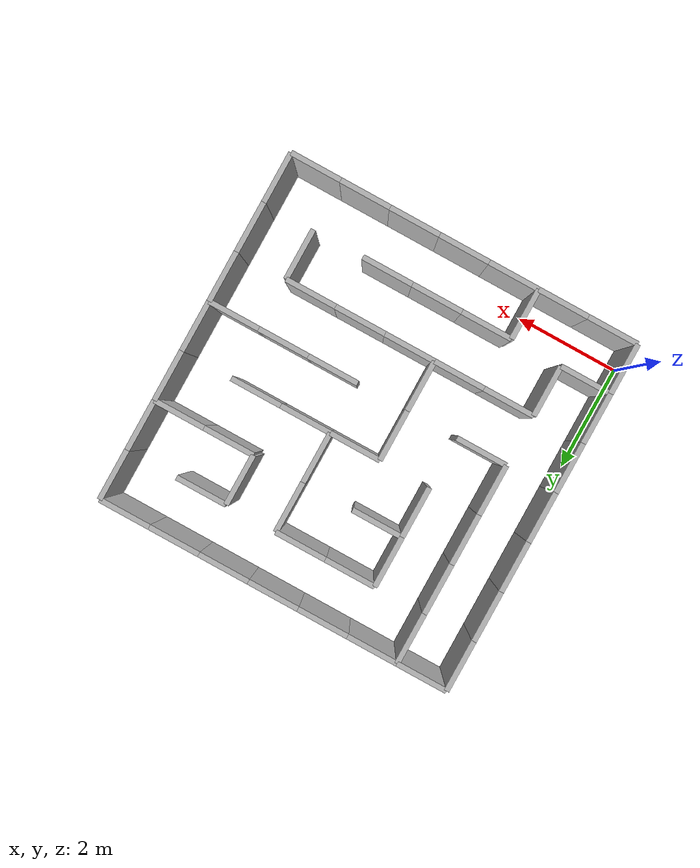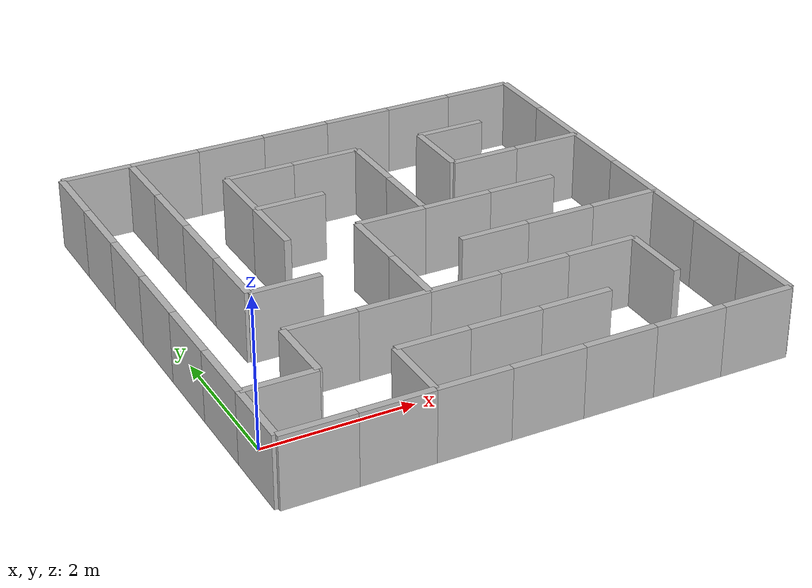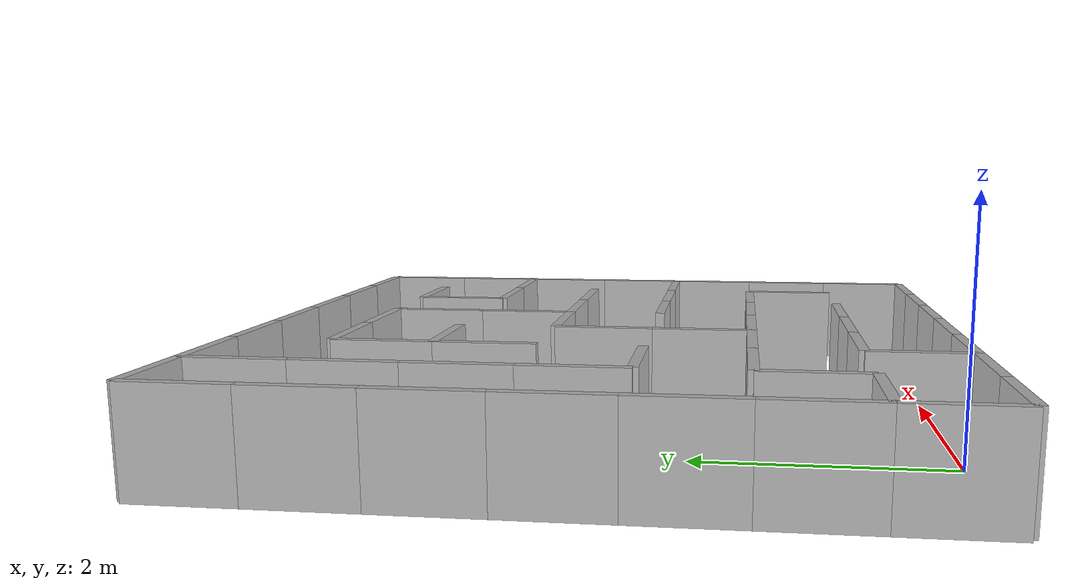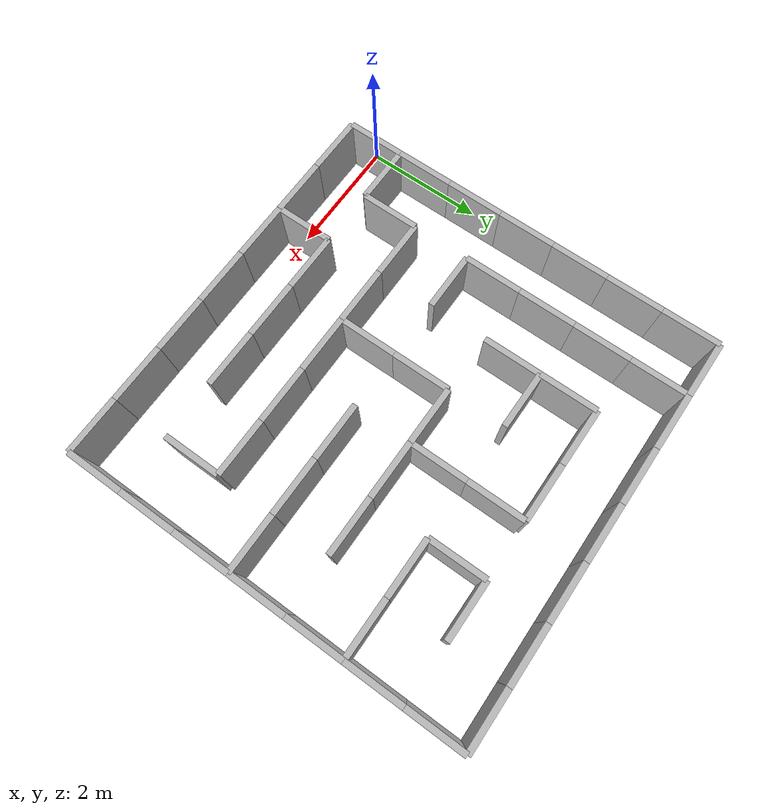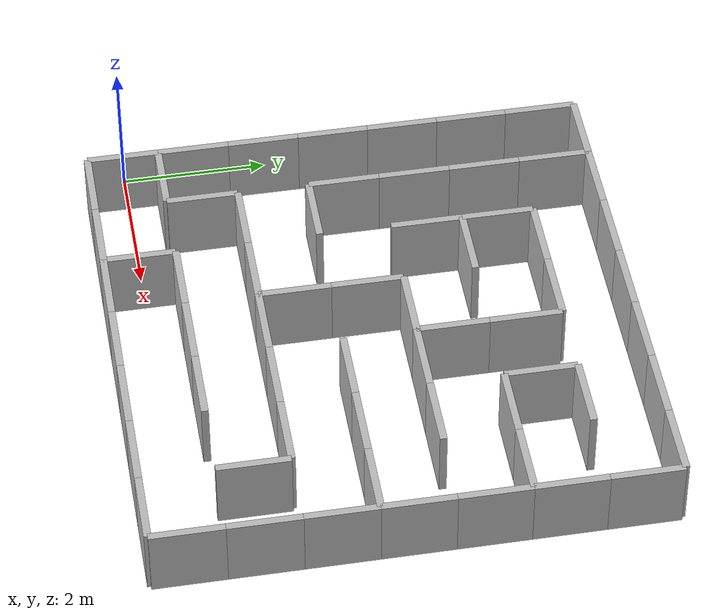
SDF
<?xml version='1.0'?>
<sdf version='1.5'>
	<model name='Maze_ql_1'>
    <static>true</static>
	<pose frame=''>0 0 0 0 0 0</pose>	<link name='Wall_0_0_0'>
		<pose frame=''>0 0 0 0 0 -1.570795</pose>
		<self_collide>0</self_collide>
		<kinematic>0</kinematic>
		<visual name='Wall_Visual'>
			<pose frame=''>0 0 0 0 0 0 </pose>
			<geometry>
				<box>
					<size>1 0.1 1</size>
				</box>
			</geometry>
			<cast_shadows>1</cast_shadows>
			<transparency>0</transparency>
		</visual>
		<collision name='Wall_Collision'>
			<laser_retro>0</laser_retro>
			<max_contacts>10</max_contacts>
			<pose frame=''>0 0 0 0 -0 0</pose>
			<geometry>
				<box>
					<size>1 0.1 1</size>
				</box>
			</geometry>
		</collision>
	</link>
	<link name='Wall_0_0_3'>
		<pose frame=''>0.5 -0.5 0 0 0 0</pose>
		<self_collide>0</self_collide>
		<kinematic>0</kinematic>
		<visual name='Wall_Visual'>
			<pose frame=''>0 0 0 0 0 0 </pose>
			<geometry>
				<box>
					<size>1 0.1 1</size>
				</box>
			</geometry>
			<cast_shadows>1</cast_shadows>
			<transparency>0</transparency>
		</visual>
		<collision name='Wall_Collision'>
			<laser_retro>0</laser_retro>
			<max_contacts>10</max_contacts>
			<pose frame=''>0 0 0 0 -0 0</pose>
			<geometry>
				<box>
					<size>1 0.1 1</size>
				</box>
			</geometry>
		</collision>
	</link>
	<link name='Wall_0_1_0'>
		<pose frame=''>0 1 0 0 0 -1.570795</pose>
		<self_collide>0</self_collide>
		<kinematic>0</kinematic>
		<visual name='Wall_Visual'>
			<pose frame=''>0 0 0 0 0 0 </pose>
			<geometry>
				<box>
					<size>1 0.1 1</size>
				</box>
			</geometry>
			<cast_shadows>1</cast_shadows>
			<transparency>0</transparency>
		</visual>
		<collision name='Wall_Collision'>
			<laser_retro>0</laser_retro>
			<max_contacts>10</max_contacts>
			<pose frame=''>0 0 0 0 -0 0</pose>
			<geometry>
				<box>
					<size>1 0.1 1</size>
				</box>
			</geometry>
		</collision>
	</link>
	<link name='Wall_0_1_3'>
		<pose frame=''>0.5 0.5 0 0 0 0</pose>
		<self_collide>0</self_collide>
		<kinematic>0</kinematic>
		<visual name='Wall_Visual'>
			<pose frame=''>0 0 0 0 0 0 </pose>
			<geometry>
				<box>
					<size>1 0.1 1</size>
				</box>
			</geometry>
			<cast_shadows>1</cast_shadows>
			<transparency>0</transparency>
		</visual>
		<collision name='Wall_Collision'>
			<laser_retro>0</laser_retro>
			<max_contacts>10</max_contacts>
			<pose frame=''>0 0 0 0 -0 0</pose>
			<geometry>
				<box>
					<size>1 0.1 1</size>
				</box>
			</geometry>
		</collision>
	</link>
	<link name='Wall_0_2_0'>
		<pose frame=''>0 2 0 0 0 -1.570795</pose>
		<self_collide>0</self_collide>
		<kinematic>0</kinematic>
		<visual name='Wall_Visual'>
			<pose frame=''>0 0 0 0 0 0 </pose>
			<geometry>
				<box>
					<size>1 0.1 1</size>
				</box>
			</geometry>
			<cast_shadows>1</cast_shadows>
			<transparency>0</transparency>
		</visual>
		<collision name='Wall_Collision'>
			<laser_retro>0</laser_retro>
			<max_contacts>10</max_contacts>
			<pose frame=''>0 0 0 0 -0 0</pose>
			<geometry>
				<box>
					<size>1 0.1 1</size>
				</box>
			</geometry>
		</collision>
	</link>
	<link name='Wall_0_3_0'>
		<pose frame=''>0 3 0 0 0 -1.570795</pose>
		<self_collide>0</self_collide>
		<kinematic>0</kinematic>
		<visual name='Wall_Visual'>
			<pose frame=''>0 0 0 0 0 0 </pose>
			<geometry>
				<box>
					<size>1 0.1 1</size>
				</box>
			</geometry>
			<cast_shadows>1</cast_shadows>
			<transparency>0</transparency>
		</visual>
		<collision name='Wall_Collision'>
			<laser_retro>0</laser_retro>
			<max_contacts>10</max_contacts>
			<pose frame=''>0 0 0 0 -0 0</pose>
			<geometry>
				<box>
					<size>1 0.1 1</size>
				</box>
			</geometry>
		</collision>
	</link>
	<link name='Wall_0_4_0'>
		<pose frame=''>0 4 0 0 0 -1.570795</pose>
		<self_collide>0</self_collide>
		<kinematic>0</kinematic>
		<visual name='Wall_Visual'>
			<pose frame=''>0 0 0 0 0 0 </pose>
			<geometry>
				<box>
					<size>1 0.1 1</size>
				</box>
			</geometry>
			<cast_shadows>1</cast_shadows>
			<transparency>0</transparency>
		</visual>
		<collision name='Wall_Collision'>
			<laser_retro>0</laser_retro>
			<max_contacts>10</max_contacts>
			<pose frame=''>0 0 0 0 -0 0</pose>
			<geometry>
				<box>
					<size>1 0.1 1</size>
				</box>
			</geometry>
		</collision>
	</link>
	<link name='Wall_0_5_0'>
		<pose frame=''>0 5 0 0 0 -1.570795</pose>
		<self_collide>0</self_collide>
		<kinematic>0</kinematic>
		<visual name='Wall_Visual'>
			<pose frame=''>0 0 0 0 0 0 </pose>
			<geometry>
				<box>
					<size>1 0.1 1</size>
				</box>
			</geometry>
			<cast_shadows>1</cast_shadows>
			<transparency>0</transparency>
		</visual>
		<collision name='Wall_Collision'>
			<laser_retro>0</laser_retro>
			<max_contacts>10</max_contacts>
			<pose frame=''>0 0 0 0 -0 0</pose>
			<geometry>
				<box>
					<size>1 0.1 1</size>
				</box>
			</geometry>
		</collision>
	</link>
	<link name='Wall_0_6_0'>
		<pose frame=''>0 6 0 0 0 -1.570795</pose>
		<self_collide>0</self_collide>
		<kinematic>0</kinematic>
		<visual name='Wall_Visual'>
			<pose frame=''>0 0 0 0 0 0 </pose>
			<geometry>
				<box>
					<size>1 0.1 1</size>
				</box>
			</geometry>
			<cast_shadows>1</cast_shadows>
			<transparency>0</transparency>
		</visual>
		<collision name='Wall_Collision'>
			<laser_retro>0</laser_retro>
			<max_contacts>10</max_contacts>
			<pose frame=''>0 0 0 0 -0 0</pose>
			<geometry>
				<box>
					<size>1 0.1 1</size>
				</box>
			</geometry>
		</collision>
	</link>
	<link name='Wall_0_6_1'>
		<pose frame=''>0.5 6.5 0 0 0 0</pose>
		<self_collide>0</self_collide>
		<kinematic>0</kinematic>
		<visual name='Wall_Visual'>
			<pose frame=''>0 0 0 0 0 0 </pose>
			<geometry>
				<box>
					<size>1 0.1 1</size>
				</box>
			</geometry>
			<cast_shadows>1</cast_shadows>
			<transparency>0</transparency>
		</visual>
		<collision name='Wall_Collision'>
			<laser_retro>0</laser_retro>
			<max_contacts>10</max_contacts>
			<pose frame=''>0 0 0 0 -0 0</pose>
			<geometry>
				<box>
					<size>1 0.1 1</size>
				</box>
			</geometry>
		</collision>
	</link>
	<link name='Wall_1_0_3'>
		<pose frame=''>1.5 -0.5 0 0 0 0</pose>
		<self_collide>0</self_collide>
		<kinematic>0</kinematic>
		<visual name='Wall_Visual'>
			<pose frame=''>0 0 0 0 0 0 </pose>
			<geometry>
				<box>
					<size>1 0.1 1</size>
				</box>
			</geometry>
			<cast_shadows>1</cast_shadows>
			<transparency>0</transparency>
		</visual>
		<collision name='Wall_Collision'>
			<laser_retro>0</laser_retro>
			<max_contacts>10</max_contacts>
			<pose frame=''>0 0 0 0 -0 0</pose>
			<geometry>
				<box>
					<size>1 0.1 1</size>
				</box>
			</geometry>
		</collision>
	</link>
	<link name='Wall_1_1_0'>
		<pose frame=''>1 1 0 0 0 -1.570795</pose>
		<self_collide>0</self_collide>
		<kinematic>0</kinematic>
		<visual name='Wall_Visual'>
			<pose frame=''>0 0 0 0 0 0 </pose>
			<geometry>
				<box>
					<size>1 0.1 1</size>
				</box>
			</geometry>
			<cast_shadows>1</cast_shadows>
			<transparency>0</transparency>
		</visual>
		<collision name='Wall_Collision'>
			<laser_retro>0</laser_retro>
			<max_contacts>10</max_contacts>
			<pose frame=''>0 0 0 0 -0 0</pose>
			<geometry>
				<box>
					<size>1 0.1 1</size>
				</box>
			</geometry>
		</collision>
	</link>
	<link name='Wall_1_2_3'>
		<pose frame=''>1.5 1.5 0 0 0 0</pose>
		<self_collide>0</self_collide>
		<kinematic>0</kinematic>
		<visual name='Wall_Visual'>
			<pose frame=''>0 0 0 0 0 0 </pose>
			<geometry>
				<box>
					<size>1 0.1 1</size>
				</box>
			</geometry>
			<cast_shadows>1</cast_shadows>
			<transparency>0</transparency>
		</visual>
		<collision name='Wall_Collision'>
			<laser_retro>0</laser_retro>
			<max_contacts>10</max_contacts>
			<pose frame=''>0 0 0 0 -0 0</pose>
			<geometry>
				<box>
					<size>1 0.1 1</size>
				</box>
			</geometry>
		</collision>
	</link>
	<link name='Wall_1_3_0'>
		<pose frame=''>1 3 0 0 0 -1.570795</pose>
		<self_collide>0</self_collide>
		<kinematic>0</kinematic>
		<visual name='Wall_Visual'>
			<pose frame=''>0 0 0 0 0 0 </pose>
			<geometry>
				<box>
					<size>1 0.1 1</size>
				</box>
			</geometry>
			<cast_shadows>1</cast_shadows>
			<transparency>0</transparency>
		</visual>
		<collision name='Wall_Collision'>
			<laser_retro>0</laser_retro>
			<max_contacts>10</max_contacts>
			<pose frame=''>0 0 0 0 -0 0</pose>
			<geometry>
				<box>
					<size>1 0.1 1</size>
				</box>
			</geometry>
		</collision>
	</link>
	<link name='Wall_1_3_3'>
		<pose frame=''>1.5 2.5 0 0 0 0</pose>
		<self_collide>0</self_collide>
		<kinematic>0</kinematic>
		<visual name='Wall_Visual'>
			<pose frame=''>0 0 0 0 0 0 </pose>
			<geometry>
				<box>
					<size>1 0.1 1</size>
				</box>
			</geometry>
			<cast_shadows>1</cast_shadows>
			<transparency>0</transparency>
		</visual>
		<collision name='Wall_Collision'>
			<laser_retro>0</laser_retro>
			<max_contacts>10</max_contacts>
			<pose frame=''>0 0 0 0 -0 0</pose>
			<geometry>
				<box>
					<size>1 0.1 1</size>
				</box>
			</geometry>
		</collision>
	</link>
	<link name='Wall_1_4_0'>
		<pose frame=''>1 4 0 0 0 -1.570795</pose>
		<self_collide>0</self_collide>
		<kinematic>0</kinematic>
		<visual name='Wall_Visual'>
			<pose frame=''>0 0 0 0 0 0 </pose>
			<geometry>
				<box>
					<size>1 0.1 1</size>
				</box>
			</geometry>
			<cast_shadows>1</cast_shadows>
			<transparency>0</transparency>
		</visual>
		<collision name='Wall_Collision'>
			<laser_retro>0</laser_retro>
			<max_contacts>10</max_contacts>
			<pose frame=''>0 0 0 0 -0 0</pose>
			<geometry>
				<box>
					<size>1 0.1 1</size>
				</box>
			</geometry>
		</collision>
	</link>
	<link name='Wall_1_5_0'>
		<pose frame=''>1 5 0 0 0 -1.570795</pose>
		<self_collide>0</self_collide>
		<kinematic>0</kinematic>
		<visual name='Wall_Visual'>
			<pose frame=''>0 0 0 0 0 0 </pose>
			<geometry>
				<box>
					<size>1 0.1 1</size>
				</box>
			</geometry>
			<cast_shadows>1</cast_shadows>
			<transparency>0</transparency>
		</visual>
		<collision name='Wall_Collision'>
			<laser_retro>0</laser_retro>
			<max_contacts>10</max_contacts>
			<pose frame=''>0 0 0 0 -0 0</pose>
			<geometry>
				<box>
					<size>1 0.1 1</size>
				</box>
			</geometry>
		</collision>
	</link>
	<link name='Wall_1_6_0'>
		<pose frame=''>1 6 0 0 0 -1.570795</pose>
		<self_collide>0</self_collide>
		<kinematic>0</kinematic>
		<visual name='Wall_Visual'>
			<pose frame=''>0 0 0 0 0 0 </pose>
			<geometry>
				<box>
					<size>1 0.1 1</size>
				</box>
			</geometry>
			<cast_shadows>1</cast_shadows>
			<transparency>0</transparency>
		</visual>
		<collision name='Wall_Collision'>
			<laser_retro>0</laser_retro>
			<max_contacts>10</max_contacts>
			<pose frame=''>0 0 0 0 -0 0</pose>
			<geometry>
				<box>
					<size>1 0.1 1</size>
				</box>
			</geometry>
		</collision>
	</link>
	<link name='Wall_1_6_1'>
		<pose frame=''>1.5 6.5 0 0 0 0</pose>
		<self_collide>0</self_collide>
		<kinematic>0</kinematic>
		<visual name='Wall_Visual'>
			<pose frame=''>0 0 0 0 0 0 </pose>
			<geometry>
				<box>
					<size>1 0.1 1</size>
				</box>
			</geometry>
			<cast_shadows>1</cast_shadows>
			<transparency>0</transparency>
		</visual>
		<collision name='Wall_Collision'>
			<laser_retro>0</laser_retro>
			<max_contacts>10</max_contacts>
			<pose frame=''>0 0 0 0 -0 0</pose>
			<geometry>
				<box>
					<size>1 0.1 1</size>
				</box>
			</geometry>
		</collision>
	</link>
	<link name='Wall_2_0_0'>
		<pose frame=''>2 0 0 0 0 -1.570795</pose>
		<self_collide>0</self_collide>
		<kinematic>0</kinematic>
		<visual name='Wall_Visual'>
			<pose frame=''>0 0 0 0 0 0 </pose>
			<geometry>
				<box>
					<size>1 0.1 1</size>
				</box>
			</geometry>
			<cast_shadows>1</cast_shadows>
			<transparency>0</transparency>
		</visual>
		<collision name='Wall_Collision'>
			<laser_retro>0</laser_retro>
			<max_contacts>10</max_contacts>
			<pose frame=''>0 0 0 0 -0 0</pose>
			<geometry>
				<box>
					<size>1 0.1 1</size>
				</box>
			</geometry>
		</collision>
	</link>
	<link name='Wall_2_0_3'>
		<pose frame=''>2.5 -0.5 0 0 0 0</pose>
		<self_collide>0</self_collide>
		<kinematic>0</kinematic>
		<visual name='Wall_Visual'>
			<pose frame=''>0 0 0 0 0 0 </pose>
			<geometry>
				<box>
					<size>1 0.1 1</size>
				</box>
			</geometry>
			<cast_shadows>1</cast_shadows>
			<transparency>0</transparency>
		</visual>
		<collision name='Wall_Collision'>
			<laser_retro>0</laser_retro>
			<max_contacts>10</max_contacts>
			<pose frame=''>0 0 0 0 -0 0</pose>
			<geometry>
				<box>
					<size>1 0.1 1</size>
				</box>
			</geometry>
		</collision>
	</link>
	<link name='Wall_2_1_3'>
		<pose frame=''>2.5 0.5 0 0 0 0</pose>
		<self_collide>0</self_collide>
		<kinematic>0</kinematic>
		<visual name='Wall_Visual'>
			<pose frame=''>0 0 0 0 0 0 </pose>
			<geometry>
				<box>
					<size>1 0.1 1</size>
				</box>
			</geometry>
			<cast_shadows>1</cast_shadows>
			<transparency>0</transparency>
		</visual>
		<collision name='Wall_Collision'>
			<laser_retro>0</laser_retro>
			<max_contacts>10</max_contacts>
			<pose frame=''>0 0 0 0 -0 0</pose>
			<geometry>
				<box>
					<size>1 0.1 1</size>
				</box>
			</geometry>
		</collision>
	</link>
	<link name='Wall_2_2_3'>
		<pose frame=''>2.5 1.5 0 0 0 0</pose>
		<self_collide>0</self_collide>
		<kinematic>0</kinematic>
		<visual name='Wall_Visual'>
			<pose frame=''>0 0 0 0 0 0 </pose>
			<geometry>
				<box>
					<size>1 0.1 1</size>
				</box>
			</geometry>
			<cast_shadows>1</cast_shadows>
			<transparency>0</transparency>
		</visual>
		<collision name='Wall_Collision'>
			<laser_retro>0</laser_retro>
			<max_contacts>10</max_contacts>
			<pose frame=''>0 0 0 0 -0 0</pose>
			<geometry>
				<box>
					<size>1 0.1 1</size>
				</box>
			</geometry>
		</collision>
	</link>
	<link name='Wall_2_4_0'>
		<pose frame=''>2 4 0 0 0 -1.570795</pose>
		<self_collide>0</self_collide>
		<kinematic>0</kinematic>
		<visual name='Wall_Visual'>
			<pose frame=''>0 0 0 0 0 0 </pose>
			<geometry>
				<box>
					<size>1 0.1 1</size>
				</box>
			</geometry>
			<cast_shadows>1</cast_shadows>
			<transparency>0</transparency>
		</visual>
		<collision name='Wall_Collision'>
			<laser_retro>0</laser_retro>
			<max_contacts>10</max_contacts>
			<pose frame=''>0 0 0 0 -0 0</pose>
			<geometry>
				<box>
					<size>1 0.1 1</size>
				</box>
			</geometry>
		</collision>
	</link>
	<link name='Wall_2_5_0'>
		<pose frame=''>2 5 0 0 0 -1.570795</pose>
		<self_collide>0</self_collide>
		<kinematic>0</kinematic>
		<visual name='Wall_Visual'>
			<pose frame=''>0 0 0 0 0 0 </pose>
			<geometry>
				<box>
					<size>1 0.1 1</size>
				</box>
			</geometry>
			<cast_shadows>1</cast_shadows>
			<transparency>0</transparency>
		</visual>
		<collision name='Wall_Collision'>
			<laser_retro>0</laser_retro>
			<max_contacts>10</max_contacts>
			<pose frame=''>0 0 0 0 -0 0</pose>
			<geometry>
				<box>
					<size>1 0.1 1</size>
				</box>
			</geometry>
		</collision>
	</link>
	<link name='Wall_2_5_3'>
		<pose frame=''>2.5 4.5 0 0 0 0</pose>
		<self_collide>0</self_collide>
		<kinematic>0</kinematic>
		<visual name='Wall_Visual'>
			<pose frame=''>0 0 0 0 0 0 </pose>
			<geometry>
				<box>
					<size>1 0.1 1</size>
				</box>
			</geometry>
			<cast_shadows>1</cast_shadows>
			<transparency>0</transparency>
		</visual>
		<collision name='Wall_Collision'>
			<laser_retro>0</laser_retro>
			<max_contacts>10</max_contacts>
			<pose frame=''>0 0 0 0 -0 0</pose>
			<geometry>
				<box>
					<size>1 0.1 1</size>
				</box>
			</geometry>
		</collision>
	</link>
	<link name='Wall_2_6_3'>
		<pose frame=''>2.5 5.5 0 0 0 0</pose>
		<self_collide>0</self_collide>
		<kinematic>0</kinematic>
		<visual name='Wall_Visual'>
			<pose frame=''>0 0 0 0 0 0 </pose>
			<geometry>
				<box>
					<size>1 0.1 1</size>
				</box>
			</geometry>
			<cast_shadows>1</cast_shadows>
			<transparency>0</transparency>
		</visual>
		<collision name='Wall_Collision'>
			<laser_retro>0</laser_retro>
			<max_contacts>10</max_contacts>
			<pose frame=''>0 0 0 0 -0 0</pose>
			<geometry>
				<box>
					<size>1 0.1 1</size>
				</box>
			</geometry>
		</collision>
	</link>
	<link name='Wall_2_6_1'>
		<pose frame=''>2.5 6.5 0 0 0 0</pose>
		<self_collide>0</self_collide>
		<kinematic>0</kinematic>
		<visual name='Wall_Visual'>
			<pose frame=''>0 0 0 0 0 0 </pose>
			<geometry>
				<box>
					<size>1 0.1 1</size>
				</box>
			</geometry>
			<cast_shadows>1</cast_shadows>
			<transparency>0</transparency>
		</visual>
		<collision name='Wall_Collision'>
			<laser_retro>0</laser_retro>
			<max_contacts>10</max_contacts>
			<pose frame=''>0 0 0 0 -0 0</pose>
			<geometry>
				<box>
					<size>1 0.1 1</size>
				</box>
			</geometry>
		</collision>
	</link>
	<link name='Wall_3_0_3'>
		<pose frame=''>3.5 -0.5 0 0 0 0</pose>
		<self_collide>0</self_collide>
		<kinematic>0</kinematic>
		<visual name='Wall_Visual'>
			<pose frame=''>0 0 0 0 0 0 </pose>
			<geometry>
				<box>
					<size>1 0.1 1</size>
				</box>
			</geometry>
			<cast_shadows>1</cast_shadows>
			<transparency>0</transparency>
		</visual>
		<collision name='Wall_Collision'>
			<laser_retro>0</laser_retro>
			<max_contacts>10</max_contacts>
			<pose frame=''>0 0 0 0 -0 0</pose>
			<geometry>
				<box>
					<size>1 0.1 1</size>
				</box>
			</geometry>
		</collision>
	</link>
	<link name='Wall_3_1_3'>
		<pose frame=''>3.5 0.5 0 0 0 0</pose>
		<self_collide>0</self_collide>
		<kinematic>0</kinematic>
		<visual name='Wall_Visual'>
			<pose frame=''>0 0 0 0 0 0 </pose>
			<geometry>
				<box>
					<size>1 0.1 1</size>
				</box>
			</geometry>
			<cast_shadows>1</cast_shadows>
			<transparency>0</transparency>
		</visual>
		<collision name='Wall_Collision'>
			<laser_retro>0</laser_retro>
			<max_contacts>10</max_contacts>
			<pose frame=''>0 0 0 0 -0 0</pose>
			<geometry>
				<box>
					<size>1 0.1 1</size>
				</box>
			</geometry>
		</collision>
	</link>
	<link name='Wall_3_2_0'>
		<pose frame=''>3 2 0 0 0 -1.570795</pose>
		<self_collide>0</self_collide>
		<kinematic>0</kinematic>
		<visual name='Wall_Visual'>
			<pose frame=''>0 0 0 0 0 0 </pose>
			<geometry>
				<box>
					<size>1 0.1 1</size>
				</box>
			</geometry>
			<cast_shadows>1</cast_shadows>
			<transparency>0</transparency>
		</visual>
		<collision name='Wall_Collision'>
			<laser_retro>0</laser_retro>
			<max_contacts>10</max_contacts>
			<pose frame=''>0 0 0 0 -0 0</pose>
			<geometry>
				<box>
					<size>1 0.1 1</size>
				</box>
			</geometry>
		</collision>
	</link>
	<link name='Wall_3_2_3'>
		<pose frame=''>3.5 1.5 0 0 0 0</pose>
		<self_collide>0</self_collide>
		<kinematic>0</kinematic>
		<visual name='Wall_Visual'>
			<pose frame=''>0 0 0 0 0 0 </pose>
			<geometry>
				<box>
					<size>1 0.1 1</size>
				</box>
			</geometry>
			<cast_shadows>1</cast_shadows>
			<transparency>0</transparency>
		</visual>
		<collision name='Wall_Collision'>
			<laser_retro>0</laser_retro>
			<max_contacts>10</max_contacts>
			<pose frame=''>0 0 0 0 -0 0</pose>
			<geometry>
				<box>
					<size>1 0.1 1</size>
				</box>
			</geometry>
		</collision>
	</link>
	<link name='Wall_3_3_0'>
		<pose frame=''>3 3 0 0 0 -1.570795</pose>
		<self_collide>0</self_collide>
		<kinematic>0</kinematic>
		<visual name='Wall_Visual'>
			<pose frame=''>0 0 0 0 0 0 </pose>
			<geometry>
				<box>
					<size>1 0.1 1</size>
				</box>
			</geometry>
			<cast_shadows>1</cast_shadows>
			<transparency>0</transparency>
		</visual>
		<collision name='Wall_Collision'>
			<laser_retro>0</laser_retro>
			<max_contacts>10</max_contacts>
			<pose frame=''>0 0 0 0 -0 0</pose>
			<geometry>
				<box>
					<size>1 0.1 1</size>
				</box>
			</geometry>
		</collision>
	</link>
	<link name='Wall_3_4_3'>
		<pose frame=''>3.5 3.5 0 0 0 0</pose>
		<self_collide>0</self_collide>
		<kinematic>0</kinematic>
		<visual name='Wall_Visual'>
			<pose frame=''>0 0 0 0 0 0 </pose>
			<geometry>
				<box>
					<size>1 0.1 1</size>
				</box>
			</geometry>
			<cast_shadows>1</cast_shadows>
			<transparency>0</transparency>
		</visual>
		<collision name='Wall_Collision'>
			<laser_retro>0</laser_retro>
			<max_contacts>10</max_contacts>
			<pose frame=''>0 0 0 0 -0 0</pose>
			<geometry>
				<box>
					<size>1 0.1 1</size>
				</box>
			</geometry>
		</collision>
	</link>
	<link name='Wall_3_6_3'>
		<pose frame=''>3.5 5.5 0 0 0 0</pose>
		<self_collide>0</self_collide>
		<kinematic>0</kinematic>
		<visual name='Wall_Visual'>
			<pose frame=''>0 0 0 0 0 0 </pose>
			<geometry>
				<box>
					<size>1 0.1 1</size>
				</box>
			</geometry>
			<cast_shadows>1</cast_shadows>
			<transparency>0</transparency>
		</visual>
		<collision name='Wall_Collision'>
			<laser_retro>0</laser_retro>
			<max_contacts>10</max_contacts>
			<pose frame=''>0 0 0 0 -0 0</pose>
			<geometry>
				<box>
					<size>1 0.1 1</size>
				</box>
			</geometry>
		</collision>
	</link>
	<link name='Wall_3_6_1'>
		<pose frame=''>3.5 6.5 0 0 0 0</pose>
		<self_collide>0</self_collide>
		<kinematic>0</kinematic>
		<visual name='Wall_Visual'>
			<pose frame=''>0 0 0 0 0 0 </pose>
			<geometry>
				<box>
					<size>1 0.1 1</size>
				</box>
			</geometry>
			<cast_shadows>1</cast_shadows>
			<transparency>0</transparency>
		</visual>
		<collision name='Wall_Collision'>
			<laser_retro>0</laser_retro>
			<max_contacts>10</max_contacts>
			<pose frame=''>0 0 0 0 -0 0</pose>
			<geometry>
				<box>
					<size>1 0.1 1</size>
				</box>
			</geometry>
		</collision>
	</link>
	<link name='Wall_4_0_3'>
		<pose frame=''>4.5 -0.5 0 0 0 0</pose>
		<self_collide>0</self_collide>
		<kinematic>0</kinematic>
		<visual name='Wall_Visual'>
			<pose frame=''>0 0 0 0 0 0 </pose>
			<geometry>
				<box>
					<size>1 0.1 1</size>
				</box>
			</geometry>
			<cast_shadows>1</cast_shadows>
			<transparency>0</transparency>
		</visual>
		<collision name='Wall_Collision'>
			<laser_retro>0</laser_retro>
			<max_contacts>10</max_contacts>
			<pose frame=''>0 0 0 0 -0 0</pose>
			<geometry>
				<box>
					<size>1 0.1 1</size>
				</box>
			</geometry>
		</collision>
	</link>
	<link name='Wall_4_1_3'>
		<pose frame=''>4.5 0.5 0 0 0 0</pose>
		<self_collide>0</self_collide>
		<kinematic>0</kinematic>
		<visual name='Wall_Visual'>
			<pose frame=''>0 0 0 0 0 0 </pose>
			<geometry>
				<box>
					<size>1 0.1 1</size>
				</box>
			</geometry>
			<cast_shadows>1</cast_shadows>
			<transparency>0</transparency>
		</visual>
		<collision name='Wall_Collision'>
			<laser_retro>0</laser_retro>
			<max_contacts>10</max_contacts>
			<pose frame=''>0 0 0 0 -0 0</pose>
			<geometry>
				<box>
					<size>1 0.1 1</size>
				</box>
			</geometry>
		</collision>
	</link>
	<link name='Wall_4_2_3'>
		<pose frame=''>4.5 1.5 0 0 0 0</pose>
		<self_collide>0</self_collide>
		<kinematic>0</kinematic>
		<visual name='Wall_Visual'>
			<pose frame=''>0 0 0 0 0 0 </pose>
			<geometry>
				<box>
					<size>1 0.1 1</size>
				</box>
			</geometry>
			<cast_shadows>1</cast_shadows>
			<transparency>0</transparency>
		</visual>
		<collision name='Wall_Collision'>
			<laser_retro>0</laser_retro>
			<max_contacts>10</max_contacts>
			<pose frame=''>0 0 0 0 -0 0</pose>
			<geometry>
				<box>
					<size>1 0.1 1</size>
				</box>
			</geometry>
		</collision>
	</link>
	<link name='Wall_4_3_3'>
		<pose frame=''>4.5 2.5 0 0 0 0</pose>
		<self_collide>0</self_collide>
		<kinematic>0</kinematic>
		<visual name='Wall_Visual'>
			<pose frame=''>0 0 0 0 0 0 </pose>
			<geometry>
				<box>
					<size>1 0.1 1</size>
				</box>
			</geometry>
			<cast_shadows>1</cast_shadows>
			<transparency>0</transparency>
		</visual>
		<collision name='Wall_Collision'>
			<laser_retro>0</laser_retro>
			<max_contacts>10</max_contacts>
			<pose frame=''>0 0 0 0 -0 0</pose>
			<geometry>
				<box>
					<size>1 0.1 1</size>
				</box>
			</geometry>
		</collision>
	</link>
	<link name='Wall_4_4_0'>
		<pose frame=''>4 4 0 0 0 -1.570795</pose>
		<self_collide>0</self_collide>
		<kinematic>0</kinematic>
		<visual name='Wall_Visual'>
			<pose frame=''>0 0 0 0 0 0 </pose>
			<geometry>
				<box>
					<size>1 0.1 1</size>
				</box>
			</geometry>
			<cast_shadows>1</cast_shadows>
			<transparency>0</transparency>
		</visual>
		<collision name='Wall_Collision'>
			<laser_retro>0</laser_retro>
			<max_contacts>10</max_contacts>
			<pose frame=''>0 0 0 0 -0 0</pose>
			<geometry>
				<box>
					<size>1 0.1 1</size>
				</box>
			</geometry>
		</collision>
	</link>
	<link name='Wall_4_4_3'>
		<pose frame=''>4.5 3.5 0 0 0 0</pose>
		<self_collide>0</self_collide>
		<kinematic>0</kinematic>
		<visual name='Wall_Visual'>
			<pose frame=''>0 0 0 0 0 0 </pose>
			<geometry>
				<box>
					<size>1 0.1 1</size>
				</box>
			</geometry>
			<cast_shadows>1</cast_shadows>
			<transparency>0</transparency>
		</visual>
		<collision name='Wall_Collision'>
			<laser_retro>0</laser_retro>
			<max_contacts>10</max_contacts>
			<pose frame=''>0 0 0 0 -0 0</pose>
			<geometry>
				<box>
					<size>1 0.1 1</size>
				</box>
			</geometry>
		</collision>
	</link>
	<link name='Wall_4_5_0'>
		<pose frame=''>4 5 0 0 0 -1.570795</pose>
		<self_collide>0</self_collide>
		<kinematic>0</kinematic>
		<visual name='Wall_Visual'>
			<pose frame=''>0 0 0 0 0 0 </pose>
			<geometry>
				<box>
					<size>1 0.1 1</size>
				</box>
			</geometry>
			<cast_shadows>1</cast_shadows>
			<transparency>0</transparency>
		</visual>
		<collision name='Wall_Collision'>
			<laser_retro>0</laser_retro>
			<max_contacts>10</max_contacts>
			<pose frame=''>0 0 0 0 -0 0</pose>
			<geometry>
				<box>
					<size>1 0.1 1</size>
				</box>
			</geometry>
		</collision>
	</link>
	<link name='Wall_4_6_1'>
		<pose frame=''>4.5 6.5 0 0 0 0</pose>
		<self_collide>0</self_collide>
		<kinematic>0</kinematic>
		<visual name='Wall_Visual'>
			<pose frame=''>0 0 0 0 0 0 </pose>
			<geometry>
				<box>
					<size>1 0.1 1</size>
				</box>
			</geometry>
			<cast_shadows>1</cast_shadows>
			<transparency>0</transparency>
		</visual>
		<collision name='Wall_Collision'>
			<laser_retro>0</laser_retro>
			<max_contacts>10</max_contacts>
			<pose frame=''>0 0 0 0 -0 0</pose>
			<geometry>
				<box>
					<size>1 0.1 1</size>
				</box>
			</geometry>
		</collision>
	</link>
	<link name='Wall_5_0_3'>
		<pose frame=''>5.5 -0.5 0 0 0 0</pose>
		<self_collide>0</self_collide>
		<kinematic>0</kinematic>
		<visual name='Wall_Visual'>
			<pose frame=''>0 0 0 0 0 0 </pose>
			<geometry>
				<box>
					<size>1 0.1 1</size>
				</box>
			</geometry>
			<cast_shadows>1</cast_shadows>
			<transparency>0</transparency>
		</visual>
		<collision name='Wall_Collision'>
			<laser_retro>0</laser_retro>
			<max_contacts>10</max_contacts>
			<pose frame=''>0 0 0 0 -0 0</pose>
			<geometry>
				<box>
					<size>1 0.1 1</size>
				</box>
			</geometry>
		</collision>
	</link>
	<link name='Wall_5_2_3'>
		<pose frame=''>5.5 1.5 0 0 0 0</pose>
		<self_collide>0</self_collide>
		<kinematic>0</kinematic>
		<visual name='Wall_Visual'>
			<pose frame=''>0 0 0 0 0 0 </pose>
			<geometry>
				<box>
					<size>1 0.1 1</size>
				</box>
			</geometry>
			<cast_shadows>1</cast_shadows>
			<transparency>0</transparency>
		</visual>
		<collision name='Wall_Collision'>
			<laser_retro>0</laser_retro>
			<max_contacts>10</max_contacts>
			<pose frame=''>0 0 0 0 -0 0</pose>
			<geometry>
				<box>
					<size>1 0.1 1</size>
				</box>
			</geometry>
		</collision>
	</link>
	<link name='Wall_5_3_3'>
		<pose frame=''>5.5 2.5 0 0 0 0</pose>
		<self_collide>0</self_collide>
		<kinematic>0</kinematic>
		<visual name='Wall_Visual'>
			<pose frame=''>0 0 0 0 0 0 </pose>
			<geometry>
				<box>
					<size>1 0.1 1</size>
				</box>
			</geometry>
			<cast_shadows>1</cast_shadows>
			<transparency>0</transparency>
		</visual>
		<collision name='Wall_Collision'>
			<laser_retro>0</laser_retro>
			<max_contacts>10</max_contacts>
			<pose frame=''>0 0 0 0 -0 0</pose>
			<geometry>
				<box>
					<size>1 0.1 1</size>
				</box>
			</geometry>
		</collision>
	</link>
	<link name='Wall_5_4_3'>
		<pose frame=''>5.5 3.5 0 0 0 0</pose>
		<self_collide>0</self_collide>
		<kinematic>0</kinematic>
		<visual name='Wall_Visual'>
			<pose frame=''>0 0 0 0 0 0 </pose>
			<geometry>
				<box>
					<size>1 0.1 1</size>
				</box>
			</geometry>
			<cast_shadows>1</cast_shadows>
			<transparency>0</transparency>
		</visual>
		<collision name='Wall_Collision'>
			<laser_retro>0</laser_retro>
			<max_contacts>10</max_contacts>
			<pose frame=''>0 0 0 0 -0 0</pose>
			<geometry>
				<box>
					<size>1 0.1 1</size>
				</box>
			</geometry>
		</collision>
	</link>
	<link name='Wall_5_5_0'>
		<pose frame=''>5 5 0 0 0 -1.570795</pose>
		<self_collide>0</self_collide>
		<kinematic>0</kinematic>
		<visual name='Wall_Visual'>
			<pose frame=''>0 0 0 0 0 0 </pose>
			<geometry>
				<box>
					<size>1 0.1 1</size>
				</box>
			</geometry>
			<cast_shadows>1</cast_shadows>
			<transparency>0</transparency>
		</visual>
		<collision name='Wall_Collision'>
			<laser_retro>0</laser_retro>
			<max_contacts>10</max_contacts>
			<pose frame=''>0 0 0 0 -0 0</pose>
			<geometry>
				<box>
					<size>1 0.1 1</size>
				</box>
			</geometry>
		</collision>
	</link>
	<link name='Wall_5_5_3'>
		<pose frame=''>5.5 4.5 0 0 0 0</pose>
		<self_collide>0</self_collide>
		<kinematic>0</kinematic>
		<visual name='Wall_Visual'>
			<pose frame=''>0 0 0 0 0 0 </pose>
			<geometry>
				<box>
					<size>1 0.1 1</size>
				</box>
			</geometry>
			<cast_shadows>1</cast_shadows>
			<transparency>0</transparency>
		</visual>
		<collision name='Wall_Collision'>
			<laser_retro>0</laser_retro>
			<max_contacts>10</max_contacts>
			<pose frame=''>0 0 0 0 -0 0</pose>
			<geometry>
				<box>
					<size>1 0.1 1</size>
				</box>
			</geometry>
		</collision>
	</link>
	<link name='Wall_5_6_3'>
		<pose frame=''>5.5 5.5 0 0 0 0</pose>
		<self_collide>0</self_collide>
		<kinematic>0</kinematic>
		<visual name='Wall_Visual'>
			<pose frame=''>0 0 0 0 0 0 </pose>
			<geometry>
				<box>
					<size>1 0.1 1</size>
				</box>
			</geometry>
			<cast_shadows>1</cast_shadows>
			<transparency>0</transparency>
		</visual>
		<collision name='Wall_Collision'>
			<laser_retro>0</laser_retro>
			<max_contacts>10</max_contacts>
			<pose frame=''>0 0 0 0 -0 0</pose>
			<geometry>
				<box>
					<size>1 0.1 1</size>
				</box>
			</geometry>
		</collision>
	</link>
	<link name='Wall_5_6_1'>
		<pose frame=''>5.5 6.5 0 0 0 0</pose>
		<self_collide>0</self_collide>
		<kinematic>0</kinematic>
		<visual name='Wall_Visual'>
			<pose frame=''>0 0 0 0 0 0 </pose>
			<geometry>
				<box>
					<size>1 0.1 1</size>
				</box>
			</geometry>
			<cast_shadows>1</cast_shadows>
			<transparency>0</transparency>
		</visual>
		<collision name='Wall_Collision'>
			<laser_retro>0</laser_retro>
			<max_contacts>10</max_contacts>
			<pose frame=''>0 0 0 0 -0 0</pose>
			<geometry>
				<box>
					<size>1 0.1 1</size>
				</box>
			</geometry>
		</collision>
	</link>
	<link name='Wall_6_0_3'>
		<pose frame=''>6.5 -0.5 0 0 0 0</pose>
		<self_collide>0</self_collide>
		<kinematic>0</kinematic>
		<visual name='Wall_Visual'>
			<pose frame=''>0 0 0 0 0 0 </pose>
			<geometry>
				<box>
					<size>1 0.1 1</size>
				</box>
			</geometry>
			<cast_shadows>1</cast_shadows>
			<transparency>0</transparency>
		</visual>
		<collision name='Wall_Collision'>
			<laser_retro>0</laser_retro>
			<max_contacts>10</max_contacts>
			<pose frame=''>0 0 0 0 -0 0</pose>
			<geometry>
				<box>
					<size>1 0.1 1</size>
				</box>
			</geometry>
		</collision>
	</link>
	<link name='Wall_6_0_2'>
		<pose frame=''>7 0 0 0 0 -1.570795</pose>
		<self_collide>0</self_collide>
		<kinematic>0</kinematic>
		<visual name='Wall_Visual'>
			<pose frame=''>0 0 0 0 0 0 </pose>
			<geometry>
				<box>
					<size>1 0.1 1</size>
				</box>
			</geometry>
			<cast_shadows>1</cast_shadows>
			<transparency>0</transparency>
		</visual>
		<collision name='Wall_Collision'>
			<laser_retro>0</laser_retro>
			<max_contacts>10</max_contacts>
			<pose frame=''>0 0 0 0 -0 0</pose>
			<geometry>
				<box>
					<size>1 0.1 1</size>
				</box>
			</geometry>
		</collision>
	</link>
	<link name='Wall_6_1_0'>
		<pose frame=''>6 1 0 0 0 -1.570795</pose>
		<self_collide>0</self_collide>
		<kinematic>0</kinematic>
		<visual name='Wall_Visual'>
			<pose frame=''>0 0 0 0 0 0 </pose>
			<geometry>
				<box>
					<size>1 0.1 1</size>
				</box>
			</geometry>
			<cast_shadows>1</cast_shadows>
			<transparency>0</transparency>
		</visual>
		<collision name='Wall_Collision'>
			<laser_retro>0</laser_retro>
			<max_contacts>10</max_contacts>
			<pose frame=''>0 0 0 0 -0 0</pose>
			<geometry>
				<box>
					<size>1 0.1 1</size>
				</box>
			</geometry>
		</collision>
	</link>
	<link name='Wall_6_1_2'>
		<pose frame=''>7 1 0 0 0 -1.570795</pose>
		<self_collide>0</self_collide>
		<kinematic>0</kinematic>
		<visual name='Wall_Visual'>
			<pose frame=''>0 0 0 0 0 0 </pose>
			<geometry>
				<box>
					<size>1 0.1 1</size>
				</box>
			</geometry>
			<cast_shadows>1</cast_shadows>
			<transparency>0</transparency>
		</visual>
		<collision name='Wall_Collision'>
			<laser_retro>0</laser_retro>
			<max_contacts>10</max_contacts>
			<pose frame=''>0 0 0 0 -0 0</pose>
			<geometry>
				<box>
					<size>1 0.1 1</size>
				</box>
			</geometry>
		</collision>
	</link>
	<link name='Wall_6_2_2'>
		<pose frame=''>7 2 0 0 0 -1.570795</pose>
		<self_collide>0</self_collide>
		<kinematic>0</kinematic>
		<visual name='Wall_Visual'>
			<pose frame=''>0 0 0 0 0 0 </pose>
			<geometry>
				<box>
					<size>1 0.1 1</size>
				</box>
			</geometry>
			<cast_shadows>1</cast_shadows>
			<transparency>0</transparency>
		</visual>
		<collision name='Wall_Collision'>
			<laser_retro>0</laser_retro>
			<max_contacts>10</max_contacts>
			<pose frame=''>0 0 0 0 -0 0</pose>
			<geometry>
				<box>
					<size>1 0.1 1</size>
				</box>
			</geometry>
		</collision>
	</link>
	<link name='Wall_6_3_3'>
		<pose frame=''>6.5 2.5 0 0 0 0</pose>
		<self_collide>0</self_collide>
		<kinematic>0</kinematic>
		<visual name='Wall_Visual'>
			<pose frame=''>0 0 0 0 0 0 </pose>
			<geometry>
				<box>
					<size>1 0.1 1</size>
				</box>
			</geometry>
			<cast_shadows>1</cast_shadows>
			<transparency>0</transparency>
		</visual>
		<collision name='Wall_Collision'>
			<laser_retro>0</laser_retro>
			<max_contacts>10</max_contacts>
			<pose frame=''>0 0 0 0 -0 0</pose>
			<geometry>
				<box>
					<size>1 0.1 1</size>
				</box>
			</geometry>
		</collision>
	</link>
	<link name='Wall_6_3_2'>
		<pose frame=''>7 3 0 0 0 -1.570795</pose>
		<self_collide>0</self_collide>
		<kinematic>0</kinematic>
		<visual name='Wall_Visual'>
			<pose frame=''>0 0 0 0 0 0 </pose>
			<geometry>
				<box>
					<size>1 0.1 1</size>
				</box>
			</geometry>
			<cast_shadows>1</cast_shadows>
			<transparency>0</transparency>
		</visual>
		<collision name='Wall_Collision'>
			<laser_retro>0</laser_retro>
			<max_contacts>10</max_contacts>
			<pose frame=''>0 0 0 0 -0 0</pose>
			<geometry>
				<box>
					<size>1 0.1 1</size>
				</box>
			</geometry>
		</collision>
	</link>
	<link name='Wall_6_4_2'>
		<pose frame=''>7 4 0 0 0 -1.570795</pose>
		<self_collide>0</self_collide>
		<kinematic>0</kinematic>
		<visual name='Wall_Visual'>
			<pose frame=''>0 0 0 0 0 0 </pose>
			<geometry>
				<box>
					<size>1 0.1 1</size>
				</box>
			</geometry>
			<cast_shadows>1</cast_shadows>
			<transparency>0</transparency>
		</visual>
		<collision name='Wall_Collision'>
			<laser_retro>0</laser_retro>
			<max_contacts>10</max_contacts>
			<pose frame=''>0 0 0 0 -0 0</pose>
			<geometry>
				<box>
					<size>1 0.1 1</size>
				</box>
			</geometry>
		</collision>
	</link>
	<link name='Wall_6_5_3'>
		<pose frame=''>6.5 4.5 0 0 0 0</pose>
		<self_collide>0</self_collide>
		<kinematic>0</kinematic>
		<visual name='Wall_Visual'>
			<pose frame=''>0 0 0 0 0 0 </pose>
			<geometry>
				<box>
					<size>1 0.1 1</size>
				</box>
			</geometry>
			<cast_shadows>1</cast_shadows>
			<transparency>0</transparency>
		</visual>
		<collision name='Wall_Collision'>
			<laser_retro>0</laser_retro>
			<max_contacts>10</max_contacts>
			<pose frame=''>0 0 0 0 -0 0</pose>
			<geometry>
				<box>
					<size>1 0.1 1</size>
				</box>
			</geometry>
		</collision>
	</link>
	<link name='Wall_6_5_2'>
		<pose frame=''>7 5 0 0 0 -1.570795</pose>
		<self_collide>0</self_collide>
		<kinematic>0</kinematic>
		<visual name='Wall_Visual'>
			<pose frame=''>0 0 0 0 0 0 </pose>
			<geometry>
				<box>
					<size>1 0.1 1</size>
				</box>
			</geometry>
			<cast_shadows>1</cast_shadows>
			<transparency>0</transparency>
		</visual>
		<collision name='Wall_Collision'>
			<laser_retro>0</laser_retro>
			<max_contacts>10</max_contacts>
			<pose frame=''>0 0 0 0 -0 0</pose>
			<geometry>
				<box>
					<size>1 0.1 1</size>
				</box>
			</geometry>
		</collision>
	</link>
	<link name='Wall_6_6_2'>
		<pose frame=''>7 6 0 0 0 -1.570795</pose>
		<self_collide>0</self_collide>
		<kinematic>0</kinematic>
		<visual name='Wall_Visual'>
			<pose frame=''>0 0 0 0 0 0 </pose>
			<geometry>
				<box>
					<size>1 0.1 1</size>
				</box>
			</geometry>
			<cast_shadows>1</cast_shadows>
			<transparency>0</transparency>
		</visual>
		<collision name='Wall_Collision'>
			<laser_retro>0</laser_retro>
			<max_contacts>10</max_contacts>
			<pose frame=''>0 0 0 0 -0 0</pose>
			<geometry>
				<box>
					<size>1 0.1 1</size>
				</box>
			</geometry>
		</collision>
	</link>
	<link name='Wall_6_6_1'>
		<pose frame=''>6.5 6.5 0 0 0 0</pose>
		<self_collide>0</self_collide>
		<kinematic>0</kinematic>
		<visual name='Wall_Visual'>
			<pose frame=''>0 0 0 0 0 0 </pose>
			<geometry>
				<box>
					<size>1 0.1 1</size>
				</box>
			</geometry>
			<cast_shadows>1</cast_shadows>
			<transparency>0</transparency>
		</visual>
		<collision name='Wall_Collision'>
			<laser_retro>0</laser_retro>
			<max_contacts>10</max_contacts>
			<pose frame=''>0 0 0 0 -0 0</pose>
			<geometry>
				<box>
					<size>1 0.1 1</size>
				</box>
			</geometry>
		</collision>
	</link>
	</model>
</sdf>
